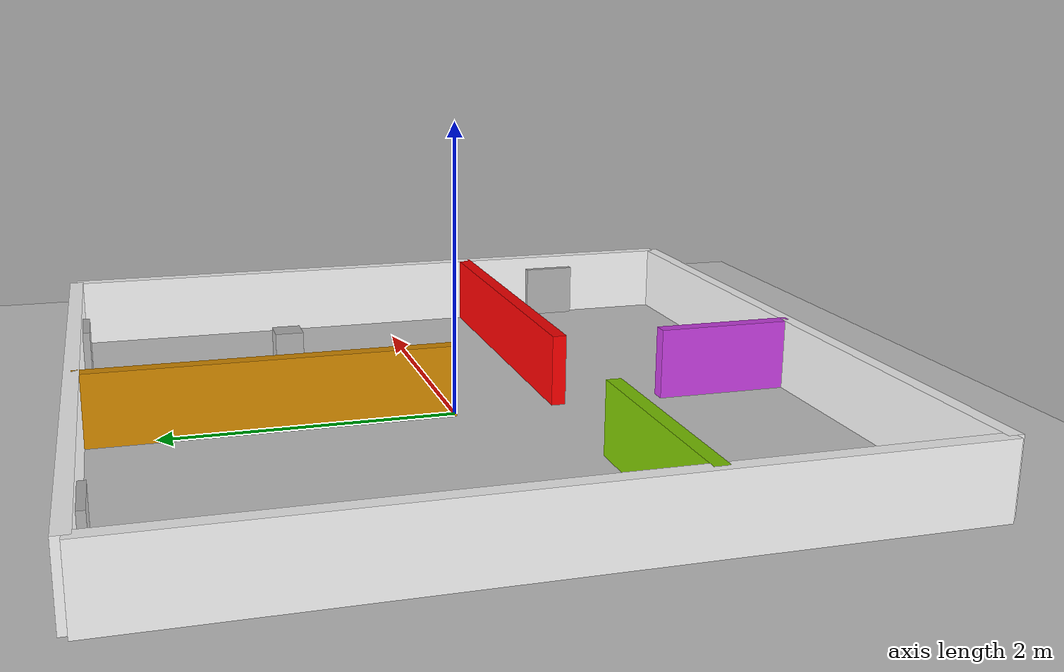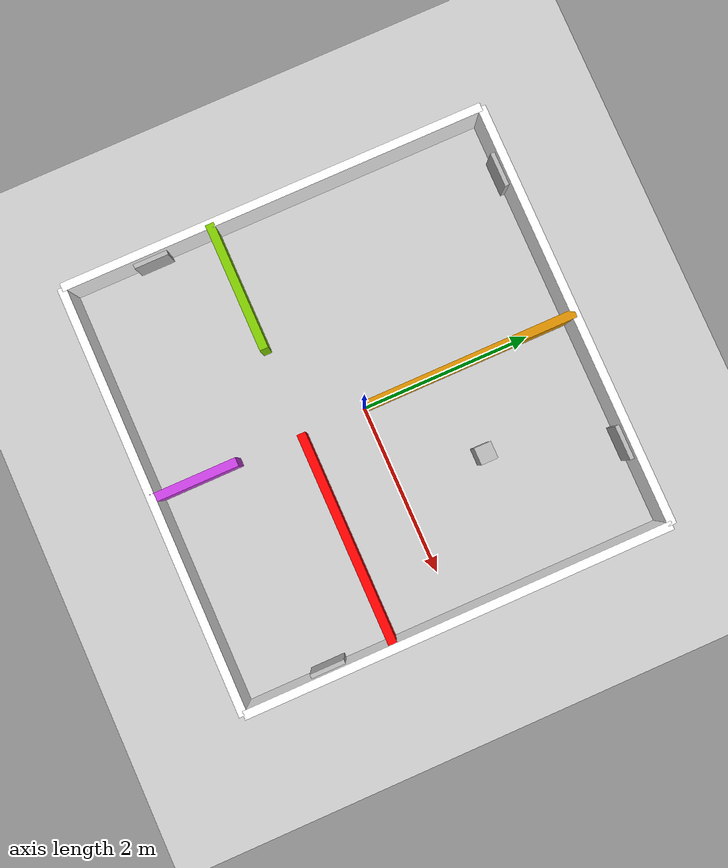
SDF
<?xml version="1.0" ?>
<sdf version="1.6">

  <world name="my_world">

     <!-- 환경광 설정 -->
    <scene>
      <ambient>0.8 0.8 0.8 1</ambient>
    </scene>

    <!-- 태양 -->
    <include>
      <uri>model://sun</uri>
    </include>

    <!-- 바닥 -->
    <include>
      <uri>model://ground_plane</uri>
    </include>

    <!-- 외벽(상) -->
    <model name="wall_top">
      <static>true</static>
      <pose>0 2.5 0.25 0 0 0</pose>

      <link name="link">
        <collision name="collision">
          <geometry>
            <box>
              <size>5 0.1 0.5</size>
            </box>
          </geometry>
        </collision>

        <visual name="visual">
          <geometry>
            <box>
              <size>5 0.1 0.5</size>
            </box>
          </geometry>

          <material>
            <ambient>1 1 0 1</ambient>
            <diffuse>1 1 1 1</diffuse>
          </material>

        </visual>
      </link>
    </model>

    <!-- 외벽(하) -->
    <model name="wall_bottom">
      <static>true</static>
      <pose>0 -2.5 0.25 0 0 0</pose>

      <link name="link">
        <collision name="collision">
          <geometry>
            <box>
              <size>5 0.1 0.5</size>
            </box>
          </geometry>
        </collision>

        <visual name="visual">
          <geometry>
            <box>
              <size>5 0.1 0.5</size>
            </box>
          </geometry>

          <material>
            <ambient>1 1 0 1</ambient>
            <diffuse>1 1 1 1</diffuse>
          </material>

        </visual>
      </link>
    </model>

    <!-- 외벽(좌) -->
    <model name="wall_left">
      <static>true</static>
      <pose>-2.5 0 0.25 0 0 1.57</pose>

      <link name="link">
        <collision name="collision">
          <geometry>
            <box>
              <size>5 0.1 0.5</size>
            </box>
          </geometry>
        </collision>

        <visual name="visual">
          <geometry>
            <box>
              <size>5 0.1 0.5</size>
            </box>
          </geometry>

          <material>
            <ambient>1 1 0 1</ambient>
            <diffuse>1 1 1 1</diffuse>
          </material>

        </visual>
      </link>
    </model>

    <!-- 외벽(우) -->
    <model name="wall_right">
      <static>true</static>
      <pose>2.5 0 0.25 0 0 1.57</pose>

      <link name="link">
        <collision name="collision">
          <geometry>
            <box>
              <size>5 0.1 0.5</size>
            </box>
          </geometry>
        </collision>

        <visual name="visual">
          <geometry>
            <box>
              <size>5 0.1 0.5</size>
            </box>
          </geometry>

          <material>
            <ambient>1 1 0 1</ambient>
            <diffuse>1 1 1 1</diffuse>
          </material>

        </visual>
      </link>
    </model>

    <!-- 상단 칸막이 -->
    <model name="partition_top">
      <static>true</static>
      <pose>0 1.25 0.25 0 0 0</pose>

      <link name="link">
        <collision name="collision">
          <geometry>
            <box>
              <size>0.1 2.5 0.5</size>
            </box>
          </geometry>
        </collision>

        <visual name="visual">
          <geometry>
            <box>
              <size>0.1 2.5 0.5</size>
            </box>
          </geometry>

          <material>
            <ambient>0.86 0.56 0 1</ambient>
            <diffuse>0.86 0.56 0 1</diffuse>
          </material>

        </visual>
      </link>
    </model>

    <!-- 좌측 칸막이 -->
    <model name="partition_left">
      <static>true</static>
      <pose>-1.75 -0.75 0.25 0 0 0</pose>

      <link name="link">
        <collision name="collision">
          <geometry>
            <box>
              <size>1.5 0.1 0.5</size>
            </box>
          </geometry>
        </collision>

        <visual name="visual">
          <geometry>
            <box>
              <size>1.5 0.1 0.5</size>
            </box>
          </geometry>

          <material>
            <ambient>0.5 0.8 0 1</ambient>
            <diffuse>0.5 0.8 0 1</diffuse>
          </material>

        </visual>
      </link>
    </model>

    <!-- 우측 칸막이 -->
    <model name="partition_right">
      <static>true</static>
      <pose>1.25 -0.75 0.25 0 0 0</pose>

      <link name="link">
        <collision name="collision">
          <geometry>
            <box>
              <size>2.0 0.1 0.5</size>
            </box>
          </geometry>
        </collision>

        <visual name="visual">
          <geometry>
            <box>
              <size>2.5 0.1 0.5</size>
            </box>
          </geometry>

          <material>
            <ambient>1.0 0.0 0.0 1.0</ambient>
            <diffuse>1.0 0.0 0.0 1.0</diffuse>
          </material>

        </visual>
      </link>
    </model>

    <!-- 하단 칸막이 -->
    <model name="partition_bottom">
      <static>true</static>
      <pose>0 -2 0.25 0 0 0</pose>

      <link name="link">
        <collision name="collision">
          <geometry>
            <box>
              <size>0.1 1 0.5</size>
            </box>
          </geometry>
        </collision>

        <visual name="visual">
          <geometry>
            <box>
              <size>0.1 1 0.5</size>
            </box>
          </geometry>

          <material>
            <ambient>0.8 0.25 0.9 1</ambient>
            <diffuse>0.8 0.25 0.9 1</diffuse>
          </material>

        </visual>

      </link>
    </model>

    <!-- Mannequin Board -->
    <model name="mannequin_board">
      <static>true</static>
      <!-- x y z roll pitch yaw -->
      <pose>1.0 1.0 0.2 0 0 0</pose>

      <link name="link">
        <!-- 충돌 영역 -->
        <collision name="collision">
          <geometry>
            <box>
              <size>0.2 0.2 0.4</size>
            </box>
          </geometry>
        </collision>

        <!-- 화면에 보이는 Box -->
        <visual name="visual">
          <geometry>
            <box>
              <size>0.2 0.2 0.4</size>
            </box>
          </geometry>

          <material>
            <script>
              <uri>file:///opt/ros/humble/share/turtlebot3_gazebo/materials/scripts</uri>
              <uri>file:///opt/ros/humble/share/turtlebot3_gazebo/materials/textures</uri>
              <name>MannequinBoard/Texture</name>
            </script>
          </material>
        </visual>

      </link>
    </model>

    <!-- QR Code Board 1 -->
    <model name="qr_code_board1">
      <static>true</static>
      <!-- x y z roll pitch yaw -->
      <pose>-1.8 2.45 0.2 0 0 0</pose>

      <link name="link">
        <!-- 충돌 영역 -->
        <collision name="collision">
          <geometry>
            <box>
              <size>0.4 0.1 0.4</size>
            </box>
          </geometry>
        </collision>

        <!-- 화면에 보이는 Box -->
        <visual name="visual">
          <geometry>
            <box>
              <size>0.4 0.1 0.4</size>
            </box>
          </geometry>

          <material>
            <script>
              <uri>file:///opt/ros/humble/share/turtlebot3_gazebo/materials/scripts</uri>
              <uri>file:///opt/ros/humble/share/turtlebot3_gazebo/materials/textures</uri>
              <name>QRCodeBoard1/Texture</name>
            </script>
          </material>
        </visual>

      </link>
    </model>

    <!-- QR Code Board 2 -->
    <model name="qr_code_board2">
      <static>true</static>
      <!-- x y z roll pitch yaw -->
      <pose>1.5 2.45 0.2 0 0 0</pose>

      <link name="link">
        <!-- 충돌 영역 -->
        <collision name="collision">
          <geometry>
            <box>
              <size>0.4 0.1 0.4</size>
            </box>
          </geometry>
        </collision>

        <!-- 화면에 보이는 Box -->
        <visual name="visual">
          <geometry>
            <box>
              <size>0.4 0.1 0.4</size>
            </box>
          </geometry>

          <material>
            <script>
              <uri>file:///opt/ros/humble/share/turtlebot3_gazebo/materials/scripts</uri>
              <uri>file:///opt/ros/humble/share/turtlebot3_gazebo/materials/textures</uri>
              <name>QRCodeBoard2/Texture</name>
            </script>
          </material>
        </visual>

      </link>
    </model>

    <!-- QR Code Board 3 -->
    <model name="qr_code_board3">
      <static>true</static>
      <!-- x y z roll pitch yaw -->
      <pose>-2.45 -1.5 0.2 0 0 0</pose>

      <link name="link">
        <!-- 충돌 영역 -->
        <collision name="collision">
          <geometry>
            <box>
              <size>0.1 0.4 0.4</size>
            </box>
          </geometry>
        </collision>

        <!-- 화면에 보이는 Box -->
        <visual name="visual">
          <geometry>
            <box>
              <size>0.1 0.4 0.4</size>
            </box>
          </geometry>

          <material>
            <script>
              <uri>file:///opt/ros/humble/share/turtlebot3_gazebo/materials/scripts</uri>
              <uri>file:///opt/ros/humble/share/turtlebot3_gazebo/materials/textures</uri>
              <name>QRCodeBoard3/Texture</name>
            </script>
          </material>
        </visual>

      </link>
    </model>

    <!-- QR Code Board 4 -->
    <model name="qr_code_board4">
      <static>true</static>
      <!-- x y z roll pitch yaw -->
      <pose>2.45 -1.5 0.2 0 0 0</pose>

      <link name="link">
        <!-- 충돌 영역 -->
        <collision name="collision">
          <geometry>
            <box>
              <size>0.1 0.4 0.4</size>
            </box>
          </geometry>
        </collision>

        <!-- 화면에 보이는 Box -->
        <visual name="visual">
          <geometry>
            <box>
              <size>0.1 0.4 0.4</size>
            </box>
          </geometry>

          <material>
            <script>
              <uri>file:///opt/ros/humble/share/turtlebot3_gazebo/materials/scripts</uri>
              <uri>file:///opt/ros/humble/share/turtlebot3_gazebo/materials/textures</uri>
              <name>QRCodeBoard4/Texture</name>
            </script>
          </material>
        </visual>

      </link>
    </model>

  </world>

</sdf>
